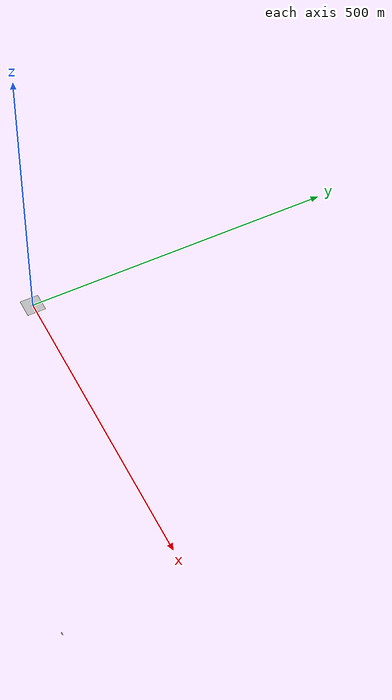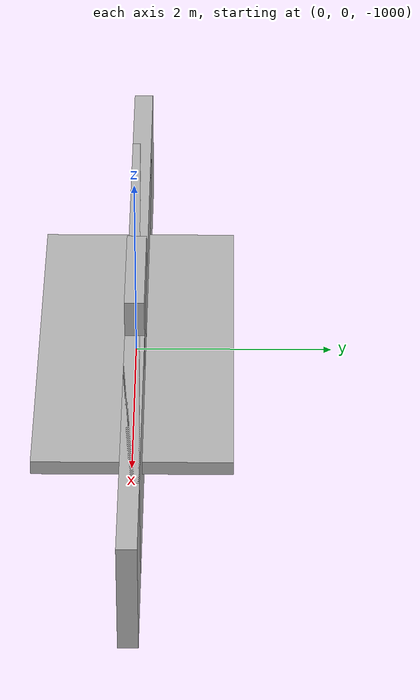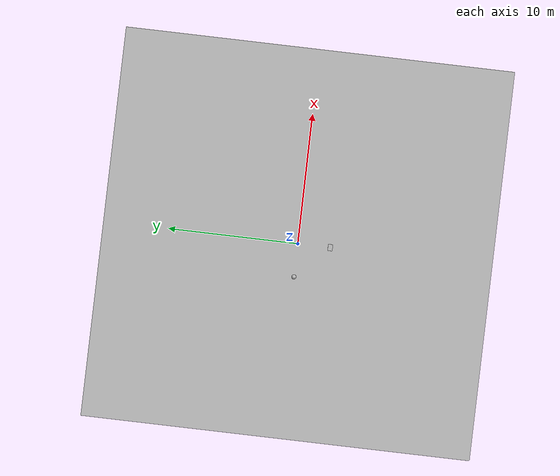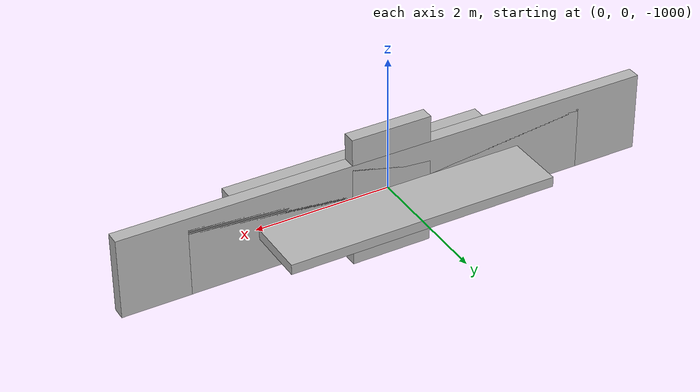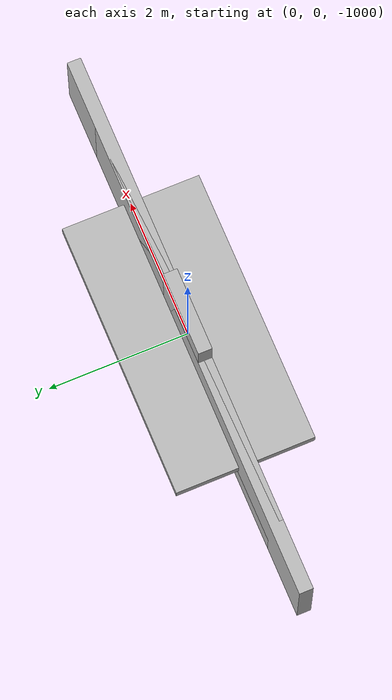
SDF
<?xml version="1.0"?>
<sdf version="1.9">
  <world name="circa_ress_v8_sim_diversity_r1">
    <physics name="deterministic_0p01" type="ignored">
      <max_step_size>0.01</max_step_size>
      <real_time_factor>0</real_time_factor>
    </physics>
    <gravity>0 0 0</gravity>
    <plugin filename="gz-sim-physics-system" name="gz::sim::systems::Physics"/>

    <model name="uav">
      <pose>-2.5 0 2 0 0 0</pose>
      <static>false</static>
      <link name="body">
        <inertial>
          <mass>1.0</mass>
          <inertia>
            <ixx>0.02</ixx><iyy>0.02</iyy><izz>0.02</izz>
            <ixy>0</ixy><ixz>0</ixz><iyz>0</iyz>
          </inertia>
        </inertial>
        <collision name="collision">
          <geometry><sphere><radius>0.18</radius></sphere></geometry>
        </collision>
        <visual name="visual">
          <geometry><sphere><radius>0.18</radius></sphere></geometry>
        </visual>
      </link>
    </model>

    <model name="ugv">
      <pose>0 -2.5 0.2 0 0 0</pose>
      <static>false</static>
      <link name="body">
        <inertial>
          <mass>1.0</mass>
          <inertia>
            <ixx>0.03</ixx><iyy>0.03</iyy><izz>0.05</izz>
            <ixy>0</ixy><ixz>0</ixz><iyz>0</iyz>
          </inertia>
        </inertial>
        <collision name="collision">
          <geometry><box><size>0.50 0.35 0.20</size></box></geometry>
        </collision>
        <visual name="visual">
          <geometry><box><size>0.50 0.35 0.20</size></box></geometry>
        </visual>
      </link>
    </model>

    <model name="floor">
      <pose>0 0 -0.06 0 0 0</pose>
      <static>true</static>
      <link name="body">
        <collision name="collision">
          <geometry><box><size>30 30 0.10</size></box></geometry>
          <surface>
            <friction>
              <ode><mu>0.80</mu><mu2>0.80</mu2></ode>
            </friction>
          </surface>
        </collision>
        <visual name="visual">
          <geometry><box><size>30 30 0.10</size></box></geometry>
        </visual>
      </link>
    </model>

    <!-- Patchable fixtures are parked below the active plane.  The independent
         adapter returns frozen pose/size/friction patches but never invokes Gazebo. -->
    <model name="sdf1_occluder">
      <pose>0 0 -1000 0 0 0</pose>
      <static>true</static>
      <link name="body">
        <collision name="collision">
          <geometry><box><size>1.20 0.20 2.00</size></box></geometry>
        </collision>
        <visual name="visual">
          <geometry><box><size>1.20 0.20 2.00</size></box></geometry>
        </visual>
      </link>
    </model>

    <model name="sdf1_corridor_left">
      <pose>0 0 -1000 0 0 0</pose>
      <static>true</static>
      <link name="body">
        <collision name="collision">
          <geometry><box><size>6.00 0.20 1.20</size></box></geometry>
        </collision>
        <visual name="visual">
          <geometry><box><size>6.00 0.20 1.20</size></box></geometry>
        </visual>
      </link>
    </model>

    <model name="sdf1_corridor_right">
      <pose>0 0 -1000 0 0 0</pose>
      <static>true</static>
      <link name="body">
        <collision name="collision">
          <geometry><box><size>6.00 0.20 1.20</size></box></geometry>
        </collision>
        <visual name="visual">
          <geometry><box><size>6.00 0.20 1.20</size></box></geometry>
        </visual>
      </link>
    </model>

    <model name="sdf2_ramp">
      <pose>0 0 -1000 0 0 0</pose>
      <static>true</static>
      <link name="body">
        <collision name="collision">
          <geometry><box><size>4.00 2.00 0.15</size></box></geometry>
          <surface>
            <friction>
              <ode><mu>0.50</mu><mu2>0.50</mu2></ode>
            </friction>
          </surface>
        </collision>
        <visual name="visual">
          <geometry><box><size>4.00 2.00 0.15</size></box></geometry>
        </visual>
      </link>
    </model>

    <model name="sdf4_corridor_left">
      <pose>0 0 -1000 0 0 0</pose>
      <static>true</static>
      <link name="body">
        <collision name="collision">
          <geometry><box><size>8.00 0.20 1.20</size></box></geometry>
        </collision>
        <visual name="visual">
          <geometry><box><size>8.00 0.20 1.20</size></box></geometry>
        </visual>
      </link>
    </model>

    <model name="sdf4_corridor_right">
      <pose>0 0 -1000 0 0 0</pose>
      <static>true</static>
      <link name="body">
        <collision name="collision">
          <geometry><box><size>8.00 0.20 1.20</size></box></geometry>
        </collision>
        <visual name="visual">
          <geometry><box><size>8.00 0.20 1.20</size></box></geometry>
        </visual>
      </link>
    </model>
  </world>
</sdf>
